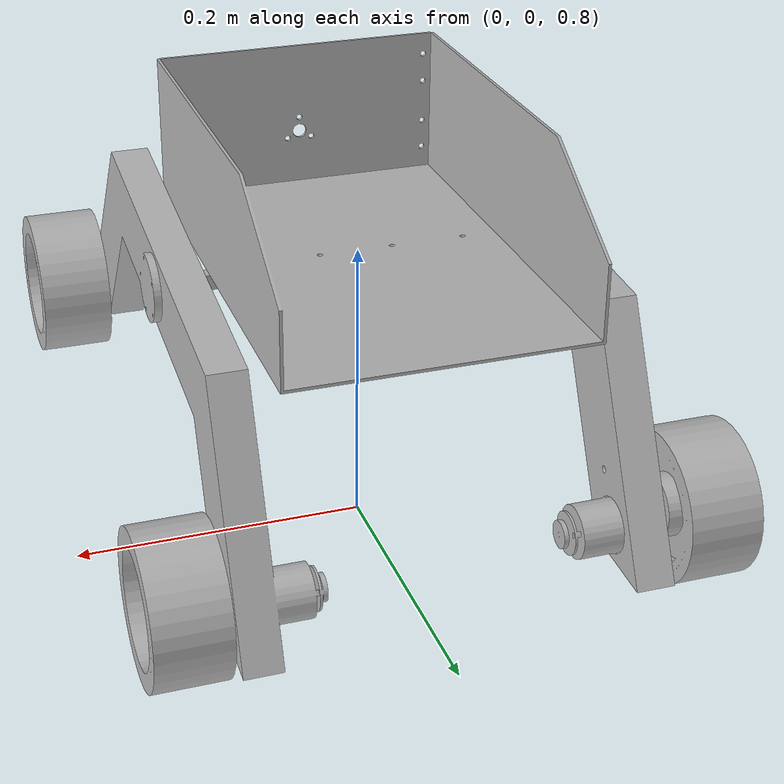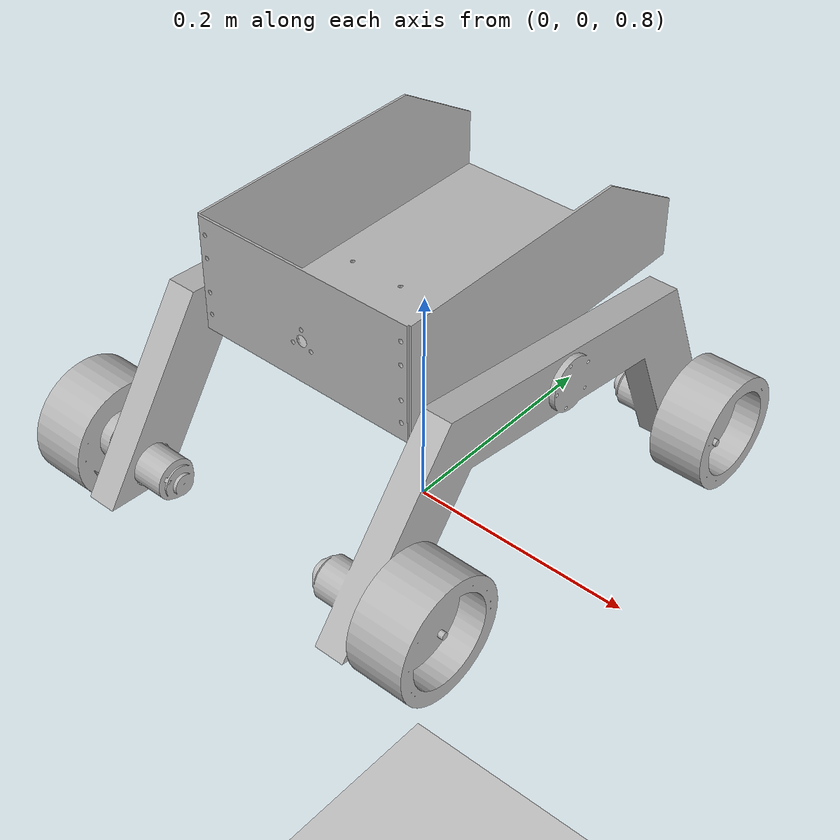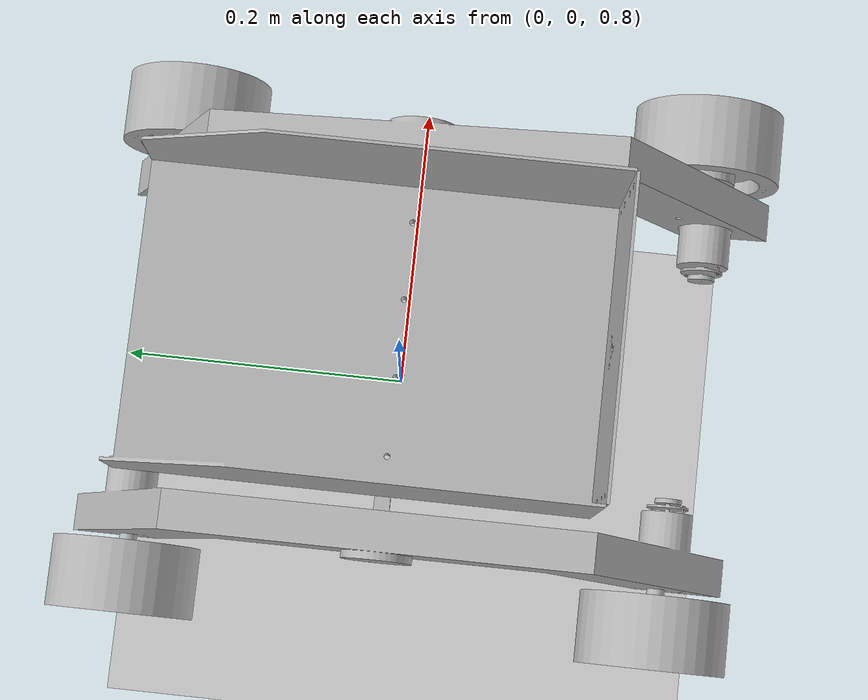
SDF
<?xml version="1.0"?>
<sdf version="1.4">
  <world name="default">

    <!-- Ground Plane -->
    <include>
      <uri>model://ground_plane</uri>
    </include>

    <include>
      <uri>model://sun</uri>
    </include>

   <model name="sagan">

    <include>
      <uri>model://modelo_sagan</uri>
    </include>

	 <!-- Attach the plugin to this model -->
	<plugin name="sagan_plugin" filename="libsagan_plugin.so">
  	<velocity>2</velocity>
	</plugin>
	<pose>0 0 0 0 0 0</pose>

	</model>
  </world>
</sdf>

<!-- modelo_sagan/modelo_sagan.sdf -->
<sdf version='1.4'>
  <model name='modelo_sagan'>
	<static>false</static>
    <link name='base_link'>
      <pose frame=''>0 0 1 0 -0 0</pose>
      <inertial>
        <mass>0.793701</mass>
        <inertia>
          <ixx>0.001</ixx>
          <ixy>0.000</ixy>
          <ixz>0.000</ixz>
          <iyy>0.001</iyy>
          <iyz>0.000</iyz>
          <izz>0.001</izz>
        </inertia>
      </inertial>
      <collision name='base_link_collision'>

        <geometry>
          <mesh>
            <scale>1 1 1</scale>
            <uri>model://modelo_sagan/meshes/base_link.STL</uri>
          </mesh>
        </geometry>
      </collision>
      <visual name='base_link_visual'>
              <geometry>
          <mesh>
            <scale>1 1 1</scale>
            <uri>model://modelo_sagan/meshes/base_link.STL</uri>
          </mesh>
        </geometry>
      </visual>
    </link>
    <link name='Sup_left'>
      <pose frame=''>-0.073147 -0.005869 0.984679 -1.5708 -0.9052 1.5708</pose>
      <inertial>
        <mass>0.396484</mass>
           <inertia>
          <ixx>0.001</ixx>
          <ixy>0.000</ixy>
          <ixz>0.000</ixz>
          <iyy>0.001</iyy>
          <iyz>0.000</iyz>
          <izz>0.001</izz>
        </inertia>
      </inertial>
      <collision name='Sup_left_collision'>
        <geometry>
          <mesh>
            <scale>1 1 1</scale>
            <uri>model://modelo_sagan/meshes/Sup_left.STL</uri>
          </mesh>
        </geometry>
      </collision>
      <visual name='Sup_left_visual'>
        <geometry>
          <mesh>
            <scale>1 1 1</scale>
            <uri>model://modelo_sagan/meshes/Sup_left.STL</uri>
          </mesh>
        </geometry>
      </visual>
    </link>
    <joint name='sup_left' type='revolute'>
      <child>Sup_left</child>
      <parent>base_link</parent>
      <axis>
        <xyz>1 1e-06 2e-06</xyz>
        <limit>
          <lower>-1e+16</lower>
          <upper>1e+16</upper>
        </limit>
        <dynamics>
          <spring_reference>0</spring_reference>
          <spring_stiffness>0</spring_stiffness>
        </dynamics>
        <use_parent_model_frame>1</use_parent_model_frame>
      </axis>
    </joint>
    <link name='BL_wheel'>
      <pose frame=''>0.141423 0.162996 0.865835 1.5708 0.747 1.5708</pose>
      <inertial>
        <mass>0.247713</mass>
            <inertia>
          <ixx>0.001</ixx>
          <ixy>0.000</ixy>
          <ixz>0.000</ixz>
          <iyy>0.001</iyy>
          <iyz>0.000</iyz>
          <izz>0.001</izz>
        </inertia>
      </inertial>
      <collision name='BL_wheel_collision'>
        <geometry>
          <mesh>
            <scale>1 1 1</scale>
            <uri>model://modelo_sagan/meshes/BL_wheel.STL</uri>
          </mesh>
        </geometry>
      </collision>
      <visual name='BL_wheel_visual'>
        <geometry>
          <mesh>
            <scale>1 1 1</scale>
            <uri>model://modelo_sagan/meshes/BL_wheel.STL</uri>
          </mesh>
        </geometry>
      </visual>
    </link>
    <joint name='BLW_sup' type='revolute'>
      <child>BL_wheel</child>
      <parent>Sup_left</parent>
      <axis>
        <xyz>1 -4e-06 -3e-06</xyz>
        <limit>
          <lower>-1e+16</lower>
          <upper>1e+16</upper>
        </limit>
        <dynamics>
          <spring_reference>0</spring_reference>
          <spring_stiffness>0</spring_stiffness>
        </dynamics>
        <use_parent_model_frame>1</use_parent_model_frame>
      </axis>
    </joint>
    <link name='FL_wheel'>
      <pose frame=''>0.141423 -0.192731 0.916689 1.57079 0.3991 1.5708</pose>
      <inertial>
        <mass>0.247713</mass>
             <inertia>
          <ixx>0.001</ixx>
          <ixy>0.000</ixy>
          <ixz>0.000</ixz>
          <iyy>0.001</iyy>
          <iyz>0.000</iyz>
          <izz>0.001</izz>
        </inertia>
      </inertial>
      <collision name='FL_wheel_collision'>
        <geometry>
          <mesh>
            <scale>1 1 1</scale>
            <uri>model://modelo_sagan/meshes/FL_wheel.STL</uri>
          </mesh>
        </geometry>
      </collision>
      <visual name='FL_wheel_visual'>
        <geometry>
          <mesh>
            <scale>1 1 1</scale>
            <uri>model://modelo_sagan/meshes/FL_wheel.STL</uri>
          </mesh>
        </geometry>
      </visual>
    </link>
    <joint name='FLW_sup' type='revolute'>
      <child>FL_wheel</child>
      <parent>Sup_left</parent>
      <axis>
        <xyz>1 4e-06 9e-06</xyz>
        <limit>
          <lower>-1e+16</lower>
          <upper>1e+16</upper>
        </limit>
        <dynamics>
          <spring_reference>0</spring_reference>
          <spring_stiffness>0</spring_stiffness>
        </dynamics>
        <use_parent_model_frame>1</use_parent_model_frame>
      </axis>
    </joint>
    <link name='Sup_right'>
      <pose frame=''>0 0 1 -1.5708 0.98291 -1.5708</pose>
      <inertial>
        <mass>0.396484</mass>
           <inertia>
          <ixx>0.001</ixx>
          <ixy>0.000</ixy>
          <ixz>0.000</ixz>
          <iyy>0.001</iyy>
          <iyz>0.000</iyz>
          <izz>0.001</izz>
        </inertia>
      </inertial>
      <collision name='Sup_right_collision'>
        <geometry>
          <mesh>
            <scale>1 1 1</scale>
            <uri>model://modelo_sagan/meshes/Sup_right.STL</uri>
          </mesh>
        </geometry>
      </collision>
      <visual name='Sup_right_visual'>
        <geometry>
          <mesh>
            <scale>1 1 1</scale>
            <uri>model://modelo_sagan/meshes/Sup_right.STL</uri>
          </mesh>
        </geometry>
      </visual>
    </link>
    <joint name='sup_right' type='revolute'>
      <child>Sup_right</child>
      <parent>base_link</parent>
      <axis>
        <xyz>1 -1e-06 -2e-06</xyz>
        <limit>
          <lower>-1e+16</lower>
          <upper>1e+16</upper>
        </limit>
        <dynamics>
          <spring_reference>0</spring_reference>
          <spring_stiffness>0</spring_stiffness>
        </dynamics>
        <use_parent_model_frame>1</use_parent_model_frame>
      </axis>
    </joint>
    <link name='BR_wheel'>
      <pose frame=''>-0.1392 0.172375 0.878897 -1.5708 -0.810417 1.57079</pose>
      <inertial>
        <mass>0.247713</mass>
            <inertia>
          <ixx>0.001</ixx>
          <ixy>0.000</ixy>
          <ixz>0.000</ixz>
          <iyy>0.001</iyy>
          <iyz>0.000</iyz>
          <izz>0.001</izz>
        </inertia>
      </inertial>
      <collision name='BR_wheel_collision'>
        <geometry>
          <mesh>
            <scale>1 1 1</scale>
            <uri>model://modelo_sagan/meshes/BR_wheel.STL</uri>
          </mesh>
        </geometry>
      </collision>
      <visual name='BR_wheel_visual'>
        <geometry>
          <mesh>
            <scale>1 1 1</scale>
            <uri>model://modelo_sagan/meshes/BR_wheel.STL</uri>
          </mesh>
        </geometry>
      </visual>
    </link>
    <joint name='BRW_sup' type='revolute'>
      <child>BR_wheel</child>
      <parent>Sup_right</parent>
      <axis>
        <xyz>1 -6e-06 3e-06</xyz>
        <limit>
          <lower>-1e+16</lower>
          <upper>1e+16</upper>
        </limit>
        <dynamics>
          <spring_reference>0</spring_reference>
          <spring_stiffness>0</spring_stiffness>
        </dynamics>
        <use_parent_model_frame>1</use_parent_model_frame>
      </axis>
    </joint>
    <link name='FR_wheel'>
      <pose frame=''>-0.1392 -0.186224 0.901985 -1.5708 -0.149417 1.5708</pose>
      <inertial>
        <mass>0.247713</mass>
             <inertia>
          <ixx>0.001</ixx>
          <ixy>0.000</ixy>
          <ixz>0.000</ixz>
          <iyy>0.001</iyy>
          <iyz>0.000</iyz>
          <izz>0.001</izz>
        </inertia>
      </inertial>
      <collision name='FR_wheel_collision'>
        <geometry>
          <mesh>
            <scale>1 1 1</scale>
            <uri>model://modelo_sagan/meshes/FR_wheel.STL</uri>
          </mesh>
        </geometry>
      </collision>
      <visual name='FR_wheel_visual'>
        <geometry>
          <mesh>
            <scale>1 1 1</scale>
            <uri>model://modelo_sagan/meshes/FR_wheel.STL</uri>
          </mesh>
        </geometry>
      </visual>
    </link>
    <joint name='FRW_sup' type='revolute'>
      <child>FR_wheel</child>
      <parent>Sup_right</parent>
      <axis>
        <xyz>1 -2e-06 5e-06</xyz>
        <limit>
          <lower>-1e+16</lower>
          <upper>1e+16</upper>
        </limit>
        <dynamics>
          <spring_reference>0</spring_reference>
          <spring_stiffness>0</spring_stiffness>
        </dynamics>
        <use_parent_model_frame>1</use_parent_model_frame>
      </axis>
    </joint>
  </model>
</sdf>
